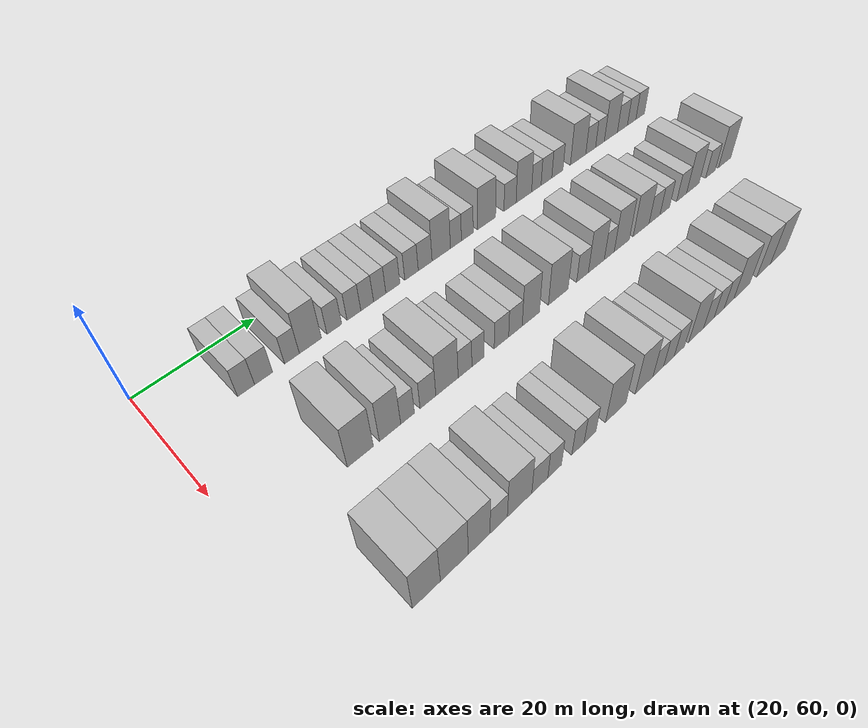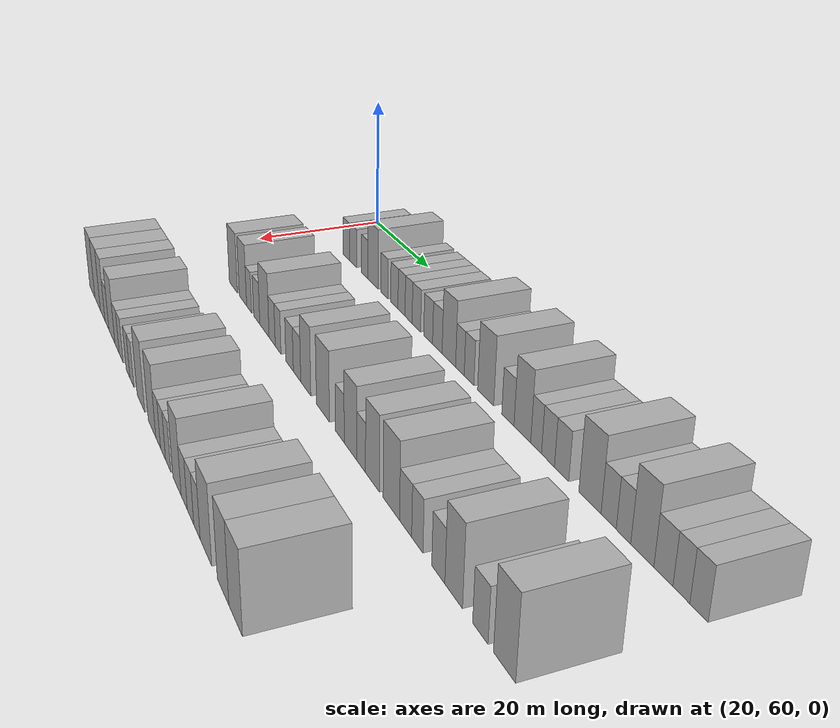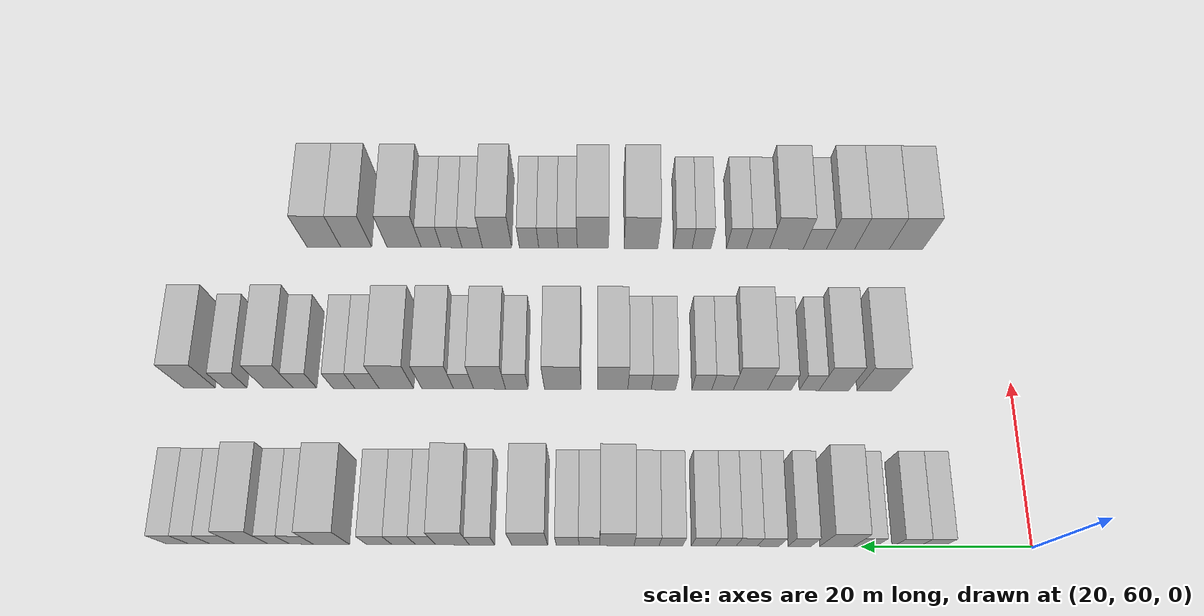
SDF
<sdf version="1.6">
 <world name="default">
  <model name="building_104">
   <static>1</static>
   <pose>25.0000 72.0563 0 0.000000 0.000000 0.000000</pose>
   <link name="link">
    <pose>0 0 3.00 0 0 0</pose>
    <collision name="collision"><geometry><box><size>10.0000 2.7497 6.0000</size></box></geometry></collision>
    <visual name="visual">
     <cast_shadows>0</cast_shadows>
     <geometry><box><size>10.0000 2.7497 6.0000</size></box></geometry>
     <material>
      <script>
       <uri>model://HANNAS_wall/materials/scripts</uri>
       <uri>model://HANNAS_wall/materials/textures</uri>
       <name>vrc/HANNAS_wall</name>
      </script>
     </material>
    </visual>
   </link>
  </model>
  <model name="building_105">
   <static>1</static>
   <pose>25.0000 74.9197 0 0.000000 0.000000 0.000000</pose>
   <link name="link">
    <pose>0 0 3.00 0 0 0</pose>
    <collision name="collision"><geometry><box><size>10.0000 2.9771 6.0000</size></box></geometry></collision>
    <visual name="visual">
     <cast_shadows>0</cast_shadows>
     <geometry><box><size>10.0000 2.9771 6.0000</size></box></geometry>
     <material>
      <script>
       <uri>model://HANNAS_wall/materials/scripts</uri>
       <uri>model://HANNAS_wall/materials/textures</uri>
       <name>vrc/HANNAS_wall</name>
      </script>
     </material>
    </visual>
   </link>
  </model>
  <model name="building_106">
   <static>1</static>
   <pose>25.0000 79.6851 0 0.000000 0.000000 0.000000</pose>
   <link name="link">
    <pose>0 0 3.00 0 0 0</pose>
    <collision name="collision"><geometry><box><size>10.0000 2.5538 6.0000</size></box></geometry></collision>
    <visual name="visual">
     <cast_shadows>0</cast_shadows>
     <geometry><box><size>10.0000 2.5538 6.0000</size></box></geometry>
     <material>
      <script>
       <uri>model://HANNAS_wall/materials/scripts</uri>
       <uri>model://HANNAS_wall/materials/textures</uri>
       <name>vrc/HANNAS_wall</name>
      </script>
     </material>
    </visual>
   </link>
  </model>
  <model name="building_107">
   <static>1</static>
   <pose>25.0000 82.9162 0 0.000000 0.000000 0.000000</pose>
   <link name="link">
    <pose>0 0 4.50 0 0 0</pose>
    <collision name="collision"><geometry><box><size>10.0000 3.9083 9.0000</size></box></geometry></collision>
    <visual name="visual">
     <cast_shadows>0</cast_shadows>
     <geometry><box><size>10.0000 3.9083 9.0000</size></box></geometry>
     <material>
      <script>
       <uri>model://HANNAS_wall/materials/scripts</uri>
       <uri>model://HANNAS_wall/materials/textures</uri>
       <name>vrc/HANNAS_wall</name>
      </script>
     </material>
    </visual>
   </link>
  </model>
  <model name="building_108">
   <static>1</static>
   <pose>25.0000 87.2199 0 0.000000 0.000000 0.000000</pose>
   <link name="link">
    <pose>0 0 3.00 0 0 0</pose>
    <collision name="collision"><geometry><box><size>10.0000 2.6990 6.0000</size></box></geometry></collision>
    <visual name="visual">
     <cast_shadows>0</cast_shadows>
     <geometry><box><size>10.0000 2.6990 6.0000</size></box></geometry>
     <material>
      <script>
       <uri>model://HANNAS_wall/materials/scripts</uri>
       <uri>model://HANNAS_wall/materials/textures</uri>
       <name>vrc/HANNAS_wall</name>
      </script>
     </material>
    </visual>
   </link>
  </model>
  <model name="building_109">
   <static>1</static>
   <pose>25.0000 90.8690 0 0.000000 0.000000 0.000000</pose>
   <link name="link">
    <pose>0 0 3.00 0 0 0</pose>
    <collision name="collision"><geometry><box><size>10.0000 2.5992 6.0000</size></box></geometry></collision>
    <visual name="visual">
     <cast_shadows>0</cast_shadows>
     <geometry><box><size>10.0000 2.5992 6.0000</size></box></geometry>
     <material>
      <script>
       <uri>model://HANNAS_wall/materials/scripts</uri>
       <uri>model://HANNAS_wall/materials/textures</uri>
       <name>vrc/HANNAS_wall</name>
      </script>
     </material>
    </visual>
   </link>
  </model>
  <model name="building_110">
   <static>1</static>
   <pose>25.0000 93.3935 0 0.000000 0.000000 0.000000</pose>
   <link name="link">
    <pose>0 0 3.00 0 0 0</pose>
    <collision name="collision"><geometry><box><size>10.0000 2.4498 6.0000</size></box></geometry></collision>
    <visual name="visual">
     <cast_shadows>0</cast_shadows>
     <geometry><box><size>10.0000 2.4498 6.0000</size></box></geometry>
     <material>
      <script>
       <uri>model://HANNAS_wall/materials/scripts</uri>
       <uri>model://HANNAS_wall/materials/textures</uri>
       <name>vrc/HANNAS_wall</name>
      </script>
     </material>
    </visual>
   </link>
  </model>
  <model name="building_111">
   <static>1</static>
   <pose>25.0000 95.8264 0 0.000000 0.000000 0.000000</pose>
   <link name="link">
    <pose>0 0 3.00 0 0 0</pose>
    <collision name="collision"><geometry><box><size>10.0000 2.4160 6.0000</size></box></geometry></collision>
    <visual name="visual">
     <cast_shadows>0</cast_shadows>
     <geometry><box><size>10.0000 2.4160 6.0000</size></box></geometry>
     <material>
      <script>
       <uri>model://HANNAS_wall/materials/scripts</uri>
       <uri>model://HANNAS_wall/materials/textures</uri>
       <name>vrc/HANNAS_wall</name>
      </script>
     </material>
    </visual>
   </link>
  </model>
  <model name="building_112">
   <static>1</static>
   <pose>25.0000 98.4387 0 0.000000 0.000000 0.000000</pose>
   <link name="link">
    <pose>0 0 3.00 0 0 0</pose>
    <collision name="collision"><geometry><box><size>10.0000 2.8087 6.0000</size></box></geometry></collision>
    <visual name="visual">
     <cast_shadows>0</cast_shadows>
     <geometry><box><size>10.0000 2.8087 6.0000</size></box></geometry>
     <material>
      <script>
       <uri>model://HANNAS_wall/materials/scripts</uri>
       <uri>model://HANNAS_wall/materials/textures</uri>
       <name>vrc/HANNAS_wall</name>
      </script>
     </material>
    </visual>
   </link>
  </model>
  <model name="building_113">
   <static>1</static>
   <pose>25.0000 102.2338 0 0.000000 0.000000 0.000000</pose>
   <link name="link">
    <pose>0 0 3.00 0 0 0</pose>
    <collision name="collision"><geometry><box><size>10.0000 2.7815 6.0000</size></box></geometry></collision>
    <visual name="visual">
     <cast_shadows>0</cast_shadows>
     <geometry><box><size>10.0000 2.7815 6.0000</size></box></geometry>
     <material>
      <script>
       <uri>model://HANNAS_wall/materials/scripts</uri>
       <uri>model://HANNAS_wall/materials/textures</uri>
       <name>vrc/HANNAS_wall</name>
      </script>
     </material>
    </visual>
   </link>
  </model>
  <model name="building_114">
   <static>1</static>
   <pose>25.0000 105.0807 0 0.000000 0.000000 0.000000</pose>
   <link name="link">
    <pose>0 0 3.00 0 0 0</pose>
    <collision name="collision"><geometry><box><size>10.0000 2.9123 6.0000</size></box></geometry></collision>
    <visual name="visual">
     <cast_shadows>0</cast_shadows>
     <geometry><box><size>10.0000 2.9123 6.0000</size></box></geometry>
     <material>
      <script>
       <uri>model://HANNAS_wall/materials/scripts</uri>
       <uri>model://HANNAS_wall/materials/textures</uri>
       <name>vrc/HANNAS_wall</name>
      </script>
     </material>
    </visual>
   </link>
  </model>
  <model name="building_115">
   <static>1</static>
   <pose>25.0000 108.5226 0 0.000000 0.000000 0.000000</pose>
   <link name="link">
    <pose>0 0 4.50 0 0 0</pose>
    <collision name="collision"><geometry><box><size>10.0000 3.9714 9.0000</size></box></geometry></collision>
    <visual name="visual">
     <cast_shadows>0</cast_shadows>
     <geometry><box><size>10.0000 3.9714 9.0000</size></box></geometry>
     <material>
      <script>
       <uri>model://HANNAS_wall/materials/scripts</uri>
       <uri>model://HANNAS_wall/materials/textures</uri>
       <name>vrc/HANNAS_wall</name>
      </script>
     </material>
    </visual>
   </link>
  </model>
  <model name="building_116">
   <static>1</static>
   <pose>25.0000 111.7250 0 0.000000 0.000000 0.000000</pose>
   <link name="link">
    <pose>0 0 3.00 0 0 0</pose>
    <collision name="collision"><geometry><box><size>10.0000 2.4335 6.0000</size></box></geometry></collision>
    <visual name="visual">
     <cast_shadows>0</cast_shadows>
     <geometry><box><size>10.0000 2.4335 6.0000</size></box></geometry>
     <material>
      <script>
       <uri>model://HANNAS_wall/materials/scripts</uri>
       <uri>model://HANNAS_wall/materials/textures</uri>
       <name>vrc/HANNAS_wall</name>
      </script>
     </material>
    </visual>
   </link>
  </model>
  <model name="building_117">
   <static>1</static>
   <pose>25.0000 114.2732 0 0.000000 0.000000 0.000000</pose>
   <link name="link">
    <pose>0 0 3.00 0 0 0</pose>
    <collision name="collision"><geometry><box><size>10.0000 2.6630 6.0000</size></box></geometry></collision>
    <visual name="visual">
     <cast_shadows>0</cast_shadows>
     <geometry><box><size>10.0000 2.6630 6.0000</size></box></geometry>
     <material>
      <script>
       <uri>model://HANNAS_wall/materials/scripts</uri>
       <uri>model://HANNAS_wall/materials/textures</uri>
       <name>vrc/HANNAS_wall</name>
      </script>
     </material>
    </visual>
   </link>
  </model>
  <model name="building_118">
   <static>1</static>
   <pose>25.0000 118.7036 0 0.000000 0.000000 0.000000</pose>
   <link name="link">
    <pose>0 0 4.50 0 0 0</pose>
    <collision name="collision"><geometry><box><size>10.0000 4.1977 9.0000</size></box></geometry></collision>
    <visual name="visual">
     <cast_shadows>0</cast_shadows>
     <geometry><box><size>10.0000 4.1977 9.0000</size></box></geometry>
     <material>
      <script>
       <uri>model://HANNAS_wall/materials/scripts</uri>
       <uri>model://HANNAS_wall/materials/textures</uri>
       <name>vrc/HANNAS_wall</name>
      </script>
     </material>
    </visual>
   </link>
  </model>
  <model name="building_119">
   <static>1</static>
   <pose>25.0000 124.2835 0 0.000000 0.000000 0.000000</pose>
   <link name="link">
    <pose>0 0 3.00 0 0 0</pose>
    <collision name="collision"><geometry><box><size>10.0000 2.9621 6.0000</size></box></geometry></collision>
    <visual name="visual">
     <cast_shadows>0</cast_shadows>
     <geometry><box><size>10.0000 2.9621 6.0000</size></box></geometry>
     <material>
      <script>
       <uri>model://HANNAS_wall/materials/scripts</uri>
       <uri>model://HANNAS_wall/materials/textures</uri>
       <name>vrc/HANNAS_wall</name>
      </script>
     </material>
    </visual>
   </link>
  </model>
  <model name="building_120">
   <static>1</static>
   <pose>25.0000 127.6969 0 0.000000 0.000000 0.000000</pose>
   <link name="link">
    <pose>0 0 4.50 0 0 0</pose>
    <collision name="collision"><geometry><box><size>10.0000 3.8647 9.0000</size></box></geometry></collision>
    <visual name="visual">
     <cast_shadows>0</cast_shadows>
     <geometry><box><size>10.0000 3.8647 9.0000</size></box></geometry>
     <material>
      <script>
       <uri>model://HANNAS_wall/materials/scripts</uri>
       <uri>model://HANNAS_wall/materials/textures</uri>
       <name>vrc/HANNAS_wall</name>
      </script>
     </material>
    </visual>
   </link>
  </model>
  <model name="building_121">
   <static>1</static>
   <pose>25.0000 130.8299 0 0.000000 0.000000 0.000000</pose>
   <link name="link">
    <pose>0 0 3.00 0 0 0</pose>
    <collision name="collision"><geometry><box><size>10.0000 2.4013 6.0000</size></box></geometry></collision>
    <visual name="visual">
     <cast_shadows>0</cast_shadows>
     <geometry><box><size>10.0000 2.4013 6.0000</size></box></geometry>
     <material>
      <script>
       <uri>model://HANNAS_wall/materials/scripts</uri>
       <uri>model://HANNAS_wall/materials/textures</uri>
       <name>vrc/HANNAS_wall</name>
      </script>
     </material>
    </visual>
   </link>
  </model>
  <model name="building_122">
   <static>1</static>
   <pose>25.0000 133.4220 0 0.000000 0.000000 0.000000</pose>
   <link name="link">
    <pose>0 0 3.00 0 0 0</pose>
    <collision name="collision"><geometry><box><size>10.0000 2.7829 6.0000</size></box></geometry></collision>
    <visual name="visual">
     <cast_shadows>0</cast_shadows>
     <geometry><box><size>10.0000 2.7829 6.0000</size></box></geometry>
     <material>
      <script>
       <uri>model://HANNAS_wall/materials/scripts</uri>
       <uri>model://HANNAS_wall/materials/textures</uri>
       <name>vrc/HANNAS_wall</name>
      </script>
     </material>
    </visual>
   </link>
  </model>
  <model name="building_123">
   <static>1</static>
   <pose>25.0000 136.2915 0 0.000000 0.000000 0.000000</pose>
   <link name="link">
    <pose>0 0 3.00 0 0 0</pose>
    <collision name="collision"><geometry><box><size>10.0000 2.9561 6.0000</size></box></geometry></collision>
    <visual name="visual">
     <cast_shadows>0</cast_shadows>
     <geometry><box><size>10.0000 2.9561 6.0000</size></box></geometry>
     <material>
      <script>
       <uri>model://HANNAS_wall/materials/scripts</uri>
       <uri>model://HANNAS_wall/materials/textures</uri>
       <name>vrc/HANNAS_wall</name>
      </script>
     </material>
    </visual>
   </link>
  </model>
  <model name="building_124">
   <static>1</static>
   <pose>25.0000 141.8852 0 0.000000 0.000000 0.000000</pose>
   <link name="link">
    <pose>0 0 4.50 0 0 0</pose>
    <collision name="collision"><geometry><box><size>10.0000 4.2313 9.0000</size></box></geometry></collision>
    <visual name="visual">
     <cast_shadows>0</cast_shadows>
     <geometry><box><size>10.0000 4.2313 9.0000</size></box></geometry>
     <material>
      <script>
       <uri>model://HANNAS_wall/materials/scripts</uri>
       <uri>model://HANNAS_wall/materials/textures</uri>
       <name>vrc/HANNAS_wall</name>
      </script>
     </material>
    </visual>
   </link>
  </model>
  <model name="building_125">
   <static>1</static>
   <pose>25.0000 145.3755 0 0.000000 0.000000 0.000000</pose>
   <link name="link">
    <pose>0 0 3.00 0 0 0</pose>
    <collision name="collision"><geometry><box><size>10.0000 2.7493 6.0000</size></box></geometry></collision>
    <visual name="visual">
     <cast_shadows>0</cast_shadows>
     <geometry><box><size>10.0000 2.7493 6.0000</size></box></geometry>
     <material>
      <script>
       <uri>model://HANNAS_wall/materials/scripts</uri>
       <uri>model://HANNAS_wall/materials/textures</uri>
       <name>vrc/HANNAS_wall</name>
      </script>
     </material>
    </visual>
   </link>
  </model>
  <model name="building_126">
   <static>1</static>
   <pose>25.0000 148.0064 0 0.000000 0.000000 0.000000</pose>
   <link name="link">
    <pose>0 0 3.00 0 0 0</pose>
    <collision name="collision"><geometry><box><size>10.0000 2.5124 6.0000</size></box></geometry></collision>
    <visual name="visual">
     <cast_shadows>0</cast_shadows>
     <geometry><box><size>10.0000 2.5124 6.0000</size></box></geometry>
     <material>
      <script>
       <uri>model://HANNAS_wall/materials/scripts</uri>
       <uri>model://HANNAS_wall/materials/textures</uri>
       <name>vrc/HANNAS_wall</name>
      </script>
     </material>
    </visual>
   </link>
  </model>
  <model name="building_127">
   <static>1</static>
   <pose>25.0000 151.1794 0 0.000000 0.000000 0.000000</pose>
   <link name="link">
    <pose>0 0 4.50 0 0 0</pose>
    <collision name="collision"><geometry><box><size>10.0000 3.8335 9.0000</size></box></geometry></collision>
    <visual name="visual">
     <cast_shadows>0</cast_shadows>
     <geometry><box><size>10.0000 3.8335 9.0000</size></box></geometry>
     <material>
      <script>
       <uri>model://HANNAS_wall/materials/scripts</uri>
       <uri>model://HANNAS_wall/materials/textures</uri>
       <name>vrc/HANNAS_wall</name>
      </script>
     </material>
    </visual>
   </link>
  </model>
  <model name="building_128">
   <static>1</static>
   <pose>25.0000 154.5914 0 0.000000 0.000000 0.000000</pose>
   <link name="link">
    <pose>0 0 3.00 0 0 0</pose>
    <collision name="collision"><geometry><box><size>10.0000 2.9905 6.0000</size></box></geometry></collision>
    <visual name="visual">
     <cast_shadows>0</cast_shadows>
     <geometry><box><size>10.0000 2.9905 6.0000</size></box></geometry>
     <material>
      <script>
       <uri>model://HANNAS_wall/materials/scripts</uri>
       <uri>model://HANNAS_wall/materials/textures</uri>
       <name>vrc/HANNAS_wall</name>
      </script>
     </material>
    </visual>
   </link>
  </model>
  <model name="building_129">
   <static>1</static>
   <pose>25.0000 157.3601 0 0.000000 0.000000 0.000000</pose>
   <link name="link">
    <pose>0 0 3.00 0 0 0</pose>
    <collision name="collision"><geometry><box><size>10.0000 2.5469 6.0000</size></box></geometry></collision>
    <visual name="visual">
     <cast_shadows>0</cast_shadows>
     <geometry><box><size>10.0000 2.5469 6.0000</size></box></geometry>
     <material>
      <script>
       <uri>model://HANNAS_wall/materials/scripts</uri>
       <uri>model://HANNAS_wall/materials/textures</uri>
       <name>vrc/HANNAS_wall</name>
      </script>
     </material>
    </visual>
   </link>
  </model>
  <model name="building_130">
   <static>1</static>
   <pose>25.0000 159.9580 0 0.000000 0.000000 0.000000</pose>
   <link name="link">
    <pose>0 0 3.00 0 0 0</pose>
    <collision name="collision"><geometry><box><size>10.0000 2.6490 6.0000</size></box></geometry></collision>
    <visual name="visual">
     <cast_shadows>0</cast_shadows>
     <geometry><box><size>10.0000 2.6490 6.0000</size></box></geometry>
     <material>
      <script>
       <uri>model://HANNAS_wall/materials/scripts</uri>
       <uri>model://HANNAS_wall/materials/textures</uri>
       <name>vrc/HANNAS_wall</name>
      </script>
     </material>
    </visual>
   </link>
  </model>
  <model name="building_276">
   <static>1</static>
   <pose>44.0000 76.8749 0 0.000000 0.000000 0.000000</pose>
   <link name="link">
    <pose>0 0 4.50 0 0 0</pose>
    <collision name="collision"><geometry><box><size>10.0000 4.2829 9.0000</size></box></geometry></collision>
    <visual name="visual">
     <cast_shadows>0</cast_shadows>
     <geometry><box><size>10.0000 4.2829 9.0000</size></box></geometry>
     <material>
      <script>
       <uri>model://HANNAS_wall/materials/scripts</uri>
       <uri>model://HANNAS_wall/materials/textures</uri>
       <name>vrc/HANNAS_wall</name>
      </script>
     </material>
    </visual>
   </link>
  </model>
  <model name="building_277">
   <static>1</static>
   <pose>44.0000 81.8533 0 0.000000 0.000000 0.000000</pose>
   <link name="link">
    <pose>0 0 4.50 0 0 0</pose>
    <collision name="collision"><geometry><box><size>10.0000 3.6740 9.0000</size></box></geometry></collision>
    <visual name="visual">
     <cast_shadows>0</cast_shadows>
     <geometry><box><size>10.0000 3.6740 9.0000</size></box></geometry>
     <material>
      <script>
       <uri>model://HANNAS_wall/materials/scripts</uri>
       <uri>model://HANNAS_wall/materials/textures</uri>
       <name>vrc/HANNAS_wall</name>
      </script>
     </material>
    </visual>
   </link>
  </model>
  <model name="building_278">
   <static>1</static>
   <pose>44.0000 84.8981 0 0.000000 0.000000 0.000000</pose>
   <link name="link">
    <pose>0 0 3.00 0 0 0</pose>
    <collision name="collision"><geometry><box><size>10.0000 2.4155 6.0000</size></box></geometry></collision>
    <visual name="visual">
     <cast_shadows>0</cast_shadows>
     <geometry><box><size>10.0000 2.4155 6.0000</size></box></geometry>
     <material>
      <script>
       <uri>model://HANNAS_wall/materials/scripts</uri>
       <uri>model://HANNAS_wall/materials/textures</uri>
       <name>vrc/HANNAS_wall</name>
      </script>
     </material>
    </visual>
   </link>
  </model>
  <model name="building_279">
   <static>1</static>
   <pose>44.0000 88.5542 0 0.000000 0.000000 0.000000</pose>
   <link name="link">
    <pose>0 0 3.00 0 0 0</pose>
    <collision name="collision"><geometry><box><size>10.0000 2.8967 6.0000</size></box></geometry></collision>
    <visual name="visual">
     <cast_shadows>0</cast_shadows>
     <geometry><box><size>10.0000 2.8967 6.0000</size></box></geometry>
     <material>
      <script>
       <uri>model://HANNAS_wall/materials/scripts</uri>
       <uri>model://HANNAS_wall/materials/textures</uri>
       <name>vrc/HANNAS_wall</name>
      </script>
     </material>
    </visual>
   </link>
  </model>
  <model name="building_280">
   <static>1</static>
   <pose>44.0000 92.1007 0 0.000000 0.000000 0.000000</pose>
   <link name="link">
    <pose>0 0 4.50 0 0 0</pose>
    <collision name="collision"><geometry><box><size>10.0000 4.1963 9.0000</size></box></geometry></collision>
    <visual name="visual">
     <cast_shadows>0</cast_shadows>
     <geometry><box><size>10.0000 4.1963 9.0000</size></box></geometry>
     <material>
      <script>
       <uri>model://HANNAS_wall/materials/scripts</uri>
       <uri>model://HANNAS_wall/materials/textures</uri>
       <name>vrc/HANNAS_wall</name>
      </script>
     </material>
    </visual>
   </link>
  </model>
  <model name="building_281">
   <static>1</static>
   <pose>44.0000 95.5311 0 0.000000 0.000000 0.000000</pose>
   <link name="link">
    <pose>0 0 3.00 0 0 0</pose>
    <collision name="collision"><geometry><box><size>10.0000 2.6646 6.0000</size></box></geometry></collision>
    <visual name="visual">
     <cast_shadows>0</cast_shadows>
     <geometry><box><size>10.0000 2.6646 6.0000</size></box></geometry>
     <material>
      <script>
       <uri>model://HANNAS_wall/materials/scripts</uri>
       <uri>model://HANNAS_wall/materials/textures</uri>
       <name>vrc/HANNAS_wall</name>
      </script>
     </material>
    </visual>
   </link>
  </model>
  <model name="building_282">
   <static>1</static>
   <pose>44.0000 98.0911 0 0.000000 0.000000 0.000000</pose>
   <link name="link">
    <pose>0 0 3.00 0 0 0</pose>
    <collision name="collision"><geometry><box><size>10.0000 2.4554 6.0000</size></box></geometry></collision>
    <visual name="visual">
     <cast_shadows>0</cast_shadows>
     <geometry><box><size>10.0000 2.4554 6.0000</size></box></geometry>
     <material>
      <script>
       <uri>model://HANNAS_wall/materials/scripts</uri>
       <uri>model://HANNAS_wall/materials/textures</uri>
       <name>vrc/HANNAS_wall</name>
      </script>
     </material>
    </visual>
   </link>
  </model>
  <model name="building_283">
   <static>1</static>
   <pose>44.0000 102.8122 0 0.000000 0.000000 0.000000</pose>
   <link name="link">
    <pose>0 0 3.00 0 0 0</pose>
    <collision name="collision"><geometry><box><size>10.0000 2.9869 6.0000</size></box></geometry></collision>
    <visual name="visual">
     <cast_shadows>0</cast_shadows>
     <geometry><box><size>10.0000 2.9869 6.0000</size></box></geometry>
     <material>
      <script>
       <uri>model://HANNAS_wall/materials/scripts</uri>
       <uri>model://HANNAS_wall/materials/textures</uri>
       <name>vrc/HANNAS_wall</name>
      </script>
     </material>
    </visual>
   </link>
  </model>
  <model name="building_284">
   <static>1</static>
   <pose>44.0000 105.7350 0 0.000000 0.000000 0.000000</pose>
   <link name="link">
    <pose>0 0 3.00 0 0 0</pose>
    <collision name="collision"><geometry><box><size>10.0000 2.8587 6.0000</size></box></geometry></collision>
    <visual name="visual">
     <cast_shadows>0</cast_shadows>
     <geometry><box><size>10.0000 2.8587 6.0000</size></box></geometry>
     <material>
      <script>
       <uri>model://HANNAS_wall/materials/scripts</uri>
       <uri>model://HANNAS_wall/materials/textures</uri>
       <name>vrc/HANNAS_wall</name>
      </script>
     </material>
    </visual>
   </link>
  </model>
  <model name="building_285">
   <static>1</static>
   <pose>44.0000 109.0394 0 0.000000 0.000000 0.000000</pose>
   <link name="link">
    <pose>0 0 4.50 0 0 0</pose>
    <collision name="collision"><geometry><box><size>10.0000 3.7499 9.0000</size></box></geometry></collision>
    <visual name="visual">
     <cast_shadows>0</cast_shadows>
     <geometry><box><size>10.0000 3.7499 9.0000</size></box></geometry>
     <material>
      <script>
       <uri>model://HANNAS_wall/materials/scripts</uri>
       <uri>model://HANNAS_wall/materials/textures</uri>
       <name>vrc/HANNAS_wall</name>
      </script>
     </material>
    </visual>
   </link>
  </model>
  <model name="building_286">
   <static>1</static>
   <pose>44.0000 115.1559 0 0.000000 0.000000 0.000000</pose>
   <link name="link">
    <pose>0 0 4.50 0 0 0</pose>
    <collision name="collision"><geometry><box><size>10.0000 4.4832 9.0000</size></box></geometry></collision>
    <visual name="visual">
     <cast_shadows>0</cast_shadows>
     <geometry><box><size>10.0000 4.4832 9.0000</size></box></geometry>
     <material>
      <script>
       <uri>model://HANNAS_wall/materials/scripts</uri>
       <uri>model://HANNAS_wall/materials/textures</uri>
       <name>vrc/HANNAS_wall</name>
      </script>
     </material>
    </visual>
   </link>
  </model>
  <model name="building_287">
   <static>1</static>
   <pose>44.0000 120.7952 0 0.000000 0.000000 0.000000</pose>
   <link name="link">
    <pose>0 0 3.00 0 0 0</pose>
    <collision name="collision"><geometry><box><size>10.0000 2.7954 6.0000</size></box></geometry></collision>
    <visual name="visual">
     <cast_shadows>0</cast_shadows>
     <geometry><box><size>10.0000 2.7954 6.0000</size></box></geometry>
     <material>
      <script>
       <uri>model://HANNAS_wall/materials/scripts</uri>
       <uri>model://HANNAS_wall/materials/textures</uri>
       <name>vrc/HANNAS_wall</name>
      </script>
     </material>
    </visual>
   </link>
  </model>
  <model name="building_288">
   <static>1</static>
   <pose>44.0000 124.1482 0 0.000000 0.000000 0.000000</pose>
   <link name="link">
    <pose>0 0 4.50 0 0 0</pose>
    <collision name="collision"><geometry><box><size>10.0000 3.9106 9.0000</size></box></geometry></collision>
    <visual name="visual">
     <cast_shadows>0</cast_shadows>
     <geometry><box><size>10.0000 3.9106 9.0000</size></box></geometry>
     <material>
      <script>
       <uri>model://HANNAS_wall/materials/scripts</uri>
       <uri>model://HANNAS_wall/materials/textures</uri>
       <name>vrc/HANNAS_wall</name>
      </script>
     </material>
    </visual>
   </link>
  </model>
  <model name="building_289">
   <static>1</static>
   <pose>44.0000 127.3404 0 0.000000 0.000000 0.000000</pose>
   <link name="link">
    <pose>0 0 3.00 0 0 0</pose>
    <collision name="collision"><geometry><box><size>10.0000 2.4738 6.0000</size></box></geometry></collision>
    <visual name="visual">
     <cast_shadows>0</cast_shadows>
     <geometry><box><size>10.0000 2.4738 6.0000</size></box></geometry>
     <material>
      <script>
       <uri>model://HANNAS_wall/materials/scripts</uri>
       <uri>model://HANNAS_wall/materials/textures</uri>
       <name>vrc/HANNAS_wall</name>
      </script>
     </material>
    </visual>
   </link>
  </model>
  <model name="building_290">
   <static>1</static>
   <pose>44.0000 130.5202 0 0.000000 0.000000 0.000000</pose>
   <link name="link">
    <pose>0 0 4.50 0 0 0</pose>
    <collision name="collision"><geometry><box><size>10.0000 3.8858 9.0000</size></box></geometry></collision>
    <visual name="visual">
     <cast_shadows>0</cast_shadows>
     <geometry><box><size>10.0000 3.8858 9.0000</size></box></geometry>
     <material>
      <script>
       <uri>model://HANNAS_wall/materials/scripts</uri>
       <uri>model://HANNAS_wall/materials/textures</uri>
       <name>vrc/HANNAS_wall</name>
      </script>
     </material>
    </visual>
   </link>
  </model>
  <model name="building_291">
   <static>1</static>
   <pose>44.0000 135.5930 0 0.000000 0.000000 0.000000</pose>
   <link name="link">
    <pose>0 0 4.50 0 0 0</pose>
    <collision name="collision"><geometry><box><size>10.0000 4.2598 9.0000</size></box></geometry></collision>
    <visual name="visual">
     <cast_shadows>0</cast_shadows>
     <geometry><box><size>10.0000 4.2598 9.0000</size></box></geometry>
     <material>
      <script>
       <uri>model://HANNAS_wall/materials/scripts</uri>
       <uri>model://HANNAS_wall/materials/textures</uri>
       <name>vrc/HANNAS_wall</name>
      </script>
     </material>
    </visual>
   </link>
  </model>
  <model name="building_292">
   <static>1</static>
   <pose>44.0000 139.2191 0 0.000000 0.000000 0.000000</pose>
   <link name="link">
    <pose>0 0 3.00 0 0 0</pose>
    <collision name="collision"><geometry><box><size>10.0000 2.9923 6.0000</size></box></geometry></collision>
    <visual name="visual">
     <cast_shadows>0</cast_shadows>
     <geometry><box><size>10.0000 2.9923 6.0000</size></box></geometry>
     <material>
      <script>
       <uri>model://HANNAS_wall/materials/scripts</uri>
       <uri>model://HANNAS_wall/materials/textures</uri>
       <name>vrc/HANNAS_wall</name>
      </script>
     </material>
    </visual>
   </link>
  </model>
  <model name="building_293">
   <static>1</static>
   <pose>44.0000 142.0519 0 0.000000 0.000000 0.000000</pose>
   <link name="link">
    <pose>0 0 3.00 0 0 0</pose>
    <collision name="collision"><geometry><box><size>10.0000 2.6733 6.0000</size></box></geometry></collision>
    <visual name="visual">
     <cast_shadows>0</cast_shadows>
     <geometry><box><size>10.0000 2.6733 6.0000</size></box></geometry>
     <material>
      <script>
       <uri>model://HANNAS_wall/materials/scripts</uri>
       <uri>model://HANNAS_wall/materials/textures</uri>
       <name>vrc/HANNAS_wall</name>
      </script>
     </material>
    </visual>
   </link>
  </model>
  <model name="building_294">
   <static>1</static>
   <pose>44.0000 146.8311 0 0.000000 0.000000 0.000000</pose>
   <link name="link">
    <pose>0 0 3.00 0 0 0</pose>
    <collision name="collision"><geometry><box><size>10.0000 2.8851 6.0000</size></box></geometry></collision>
    <visual name="visual">
     <cast_shadows>0</cast_shadows>
     <geometry><box><size>10.0000 2.8851 6.0000</size></box></geometry>
     <material>
      <script>
       <uri>model://HANNAS_wall/materials/scripts</uri>
       <uri>model://HANNAS_wall/materials/textures</uri>
       <name>vrc/HANNAS_wall</name>
      </script>
     </material>
    </visual>
   </link>
  </model>
  <model name="building_295">
   <static>1</static>
   <pose>44.0000 150.1090 0 0.000000 0.000000 0.000000</pose>
   <link name="link">
    <pose>0 0 4.50 0 0 0</pose>
    <collision name="collision"><geometry><box><size>10.0000 3.6707 9.0000</size></box></geometry></collision>
    <visual name="visual">
     <cast_shadows>0</cast_shadows>
     <geometry><box><size>10.0000 3.6707 9.0000</size></box></geometry>
     <material>
      <script>
       <uri>model://HANNAS_wall/materials/scripts</uri>
       <uri>model://HANNAS_wall/materials/textures</uri>
       <name>vrc/HANNAS_wall</name>
      </script>
     </material>
    </visual>
   </link>
  </model>
  <model name="building_296">
   <static>1</static>
   <pose>44.0000 155.4129 0 0.000000 0.000000 0.000000</pose>
   <link name="link">
    <pose>0 0 3.00 0 0 0</pose>
    <collision name="collision"><geometry><box><size>10.0000 2.9372 6.0000</size></box></geometry></collision>
    <visual name="visual">
     <cast_shadows>0</cast_shadows>
     <geometry><box><size>10.0000 2.9372 6.0000</size></box></geometry>
     <material>
      <script>
       <uri>model://HANNAS_wall/materials/scripts</uri>
       <uri>model://HANNAS_wall/materials/textures</uri>
       <name>vrc/HANNAS_wall</name>
      </script>
     </material>
    </visual>
   </link>
  </model>
  <model name="building_297">
   <static>1</static>
   <pose>44.0000 159.8414 0 0.000000 0.000000 0.000000</pose>
   <link name="link">
    <pose>0 0 4.50 0 0 0</pose>
    <collision name="collision"><geometry><box><size>10.0000 3.9198 9.0000</size></box></geometry></collision>
    <visual name="visual">
     <cast_shadows>0</cast_shadows>
     <geometry><box><size>10.0000 3.9198 9.0000</size></box></geometry>
     <material>
      <script>
       <uri>model://HANNAS_wall/materials/scripts</uri>
       <uri>model://HANNAS_wall/materials/textures</uri>
       <name>vrc/HANNAS_wall</name>
      </script>
     </material>
    </visual>
   </link>
  </model>
  <model name="building_454">
   <static>1</static>
   <pose>63.0000 71.2263 0 0.000000 0.000000 0.000000</pose>
   <link name="link">
    <pose>0 0 4.50 0 0 0</pose>
    <collision name="collision"><geometry><box><size>10.0000 4.2923 9.0000</size></box></geometry></collision>
    <visual name="visual">
     <cast_shadows>0</cast_shadows>
     <geometry><box><size>10.0000 4.2923 9.0000</size></box></geometry>
     <material>
      <script>
       <uri>model://HANNAS_wall/materials/scripts</uri>
       <uri>model://HANNAS_wall/materials/textures</uri>
       <name>vrc/HANNAS_wall</name>
      </script>
     </material>
    </visual>
   </link>
  </model>
  <model name="building_455">
   <static>1</static>
   <pose>63.0000 75.6053 0 0.000000 0.000000 0.000000</pose>
   <link name="link">
    <pose>0 0 4.50 0 0 0</pose>
    <collision name="collision"><geometry><box><size>10.0000 4.4658 9.0000</size></box></geometry></collision>
    <visual name="visual">
     <cast_shadows>0</cast_shadows>
     <geometry><box><size>10.0000 4.4658 9.0000</size></box></geometry>
     <material>
      <script>
       <uri>model://HANNAS_wall/materials/scripts</uri>
       <uri>model://HANNAS_wall/materials/textures</uri>
       <name>vrc/HANNAS_wall</name>
      </script>
     </material>
    </visual>
   </link>
  </model>
  <model name="building_456">
   <static>1</static>
   <pose>63.0000 79.6479 0 0.000000 0.000000 0.000000</pose>
   <link name="link">
    <pose>0 0 4.50 0 0 0</pose>
    <collision name="collision"><geometry><box><size>10.0000 3.6194 9.0000</size></box></geometry></collision>
    <visual name="visual">
     <cast_shadows>0</cast_shadows>
     <geometry><box><size>10.0000 3.6194 9.0000</size></box></geometry>
     <material>
      <script>
       <uri>model://HANNAS_wall/materials/scripts</uri>
       <uri>model://HANNAS_wall/materials/textures</uri>
       <name>vrc/HANNAS_wall</name>
      </script>
     </material>
    </visual>
   </link>
  </model>
  <model name="building_457">
   <static>1</static>
   <pose>63.0000 82.9490 0 0.000000 0.000000 0.000000</pose>
   <link name="link">
    <pose>0 0 3.00 0 0 0</pose>
    <collision name="collision"><geometry><box><size>10.0000 2.9828 6.0000</size></box></geometry></collision>
    <visual name="visual">
     <cast_shadows>0</cast_shadows>
     <geometry><box><size>10.0000 2.9828 6.0000</size></box></geometry>
     <material>
      <script>
       <uri>model://HANNAS_wall/materials/scripts</uri>
       <uri>model://HANNAS_wall/materials/textures</uri>
       <name>vrc/HANNAS_wall</name>
      </script>
     </material>
    </visual>
   </link>
  </model>
  <model name="building_458">
   <static>1</static>
   <pose>63.0000 86.6181 0 0.000000 0.000000 0.000000</pose>
   <link name="link">
    <pose>0 0 4.50 0 0 0</pose>
    <collision name="collision"><geometry><box><size>10.0000 4.3553 9.0000</size></box></geometry></collision>
    <visual name="visual">
     <cast_shadows>0</cast_shadows>
     <geometry><box><size>10.0000 4.3553 9.0000</size></box></geometry>
     <material>
      <script>
       <uri>model://HANNAS_wall/materials/scripts</uri>
       <uri>model://HANNAS_wall/materials/textures</uri>
       <name>vrc/HANNAS_wall</name>
      </script>
     </material>
    </visual>
   </link>
  </model>
  <model name="building_459">
   <static>1</static>
   <pose>63.0000 90.2735 0 0.000000 0.000000 0.000000</pose>
   <link name="link">
    <pose>0 0 3.00 0 0 0</pose>
    <collision name="collision"><geometry><box><size>10.0000 2.9556 6.0000</size></box></geometry></collision>
    <visual name="visual">
     <cast_shadows>0</cast_shadows>
     <geometry><box><size>10.0000 2.9556 6.0000</size></box></geometry>
     <material>
      <script>
       <uri>model://HANNAS_wall/materials/scripts</uri>
       <uri>model://HANNAS_wall/materials/textures</uri>
       <name>vrc/HANNAS_wall</name>
      </script>
     </material>
    </visual>
   </link>
  </model>
  <model name="building_460">
   <static>1</static>
   <pose>63.0000 93.0572 0 0.000000 0.000000 0.000000</pose>
   <link name="link">
    <pose>0 0 3.00 0 0 0</pose>
    <collision name="collision"><geometry><box><size>10.0000 2.6119 6.0000</size></box></geometry></collision>
    <visual name="visual">
     <cast_shadows>0</cast_shadows>
     <geometry><box><size>10.0000 2.6119 6.0000</size></box></geometry>
     <material>
      <script>
       <uri>model://HANNAS_wall/materials/scripts</uri>
       <uri>model://HANNAS_wall/materials/textures</uri>
       <name>vrc/HANNAS_wall</name>
      </script>
     </material>
    </visual>
   </link>
  </model>
  <model name="building_461">
   <static>1</static>
   <pose>63.0000 97.5764 0 0.000000 0.000000 0.000000</pose>
   <link name="link">
    <pose>0 0 3.00 0 0 0</pose>
    <collision name="collision"><geometry><box><size>10.0000 2.4265 6.0000</size></box></geometry></collision>
    <visual name="visual">
     <cast_shadows>0</cast_shadows>
     <geometry><box><size>10.0000 2.4265 6.0000</size></box></geometry>
     <material>
      <script>
       <uri>model://HANNAS_wall/materials/scripts</uri>
       <uri>model://HANNAS_wall/materials/textures</uri>
       <name>vrc/HANNAS_wall</name>
      </script>
     </material>
    </visual>
   </link>
  </model>
  <model name="building_462">
   <static>1</static>
   <pose>63.0000 99.9962 0 0.000000 0.000000 0.000000</pose>
   <link name="link">
    <pose>0 0 3.00 0 0 0</pose>
    <collision name="collision"><geometry><box><size>10.0000 2.4131 6.0000</size></box></geometry></collision>
    <visual name="visual">
     <cast_shadows>0</cast_shadows>
     <geometry><box><size>10.0000 2.4131 6.0000</size></box></geometry>
     <material>
      <script>
       <uri>model://HANNAS_wall/materials/scripts</uri>
       <uri>model://HANNAS_wall/materials/textures</uri>
       <name>vrc/HANNAS_wall</name>
      </script>
     </material>
    </visual>
   </link>
  </model>
  <model name="building_463">
   <static>1</static>
   <pose>63.0000 105.3827 0 0.000000 0.000000 0.000000</pose>
   <link name="link">
    <pose>0 0 4.50 0 0 0</pose>
    <collision name="collision"><geometry><box><size>10.0000 4.3598 9.0000</size></box></geometry></collision>
    <visual name="visual">
     <cast_shadows>0</cast_shadows>
     <geometry><box><size>10.0000 4.3598 9.0000</size></box></geometry>
     <material>
      <script>
       <uri>model://HANNAS_wall/materials/scripts</uri>
       <uri>model://HANNAS_wall/materials/textures</uri>
       <name>vrc/HANNAS_wall</name>
      </script>
     </material>
    </visual>
   </link>
  </model>
  <model name="building_464">
   <static>1</static>
   <pose>63.0000 111.5710 0 0.000000 0.000000 0.000000</pose>
   <link name="link">
    <pose>0 0 4.50 0 0 0</pose>
    <collision name="collision"><geometry><box><size>10.0000 4.0169 9.0000</size></box></geometry></collision>
    <visual name="visual">
     <cast_shadows>0</cast_shadows>
     <geometry><box><size>10.0000 4.0169 9.0000</size></box></geometry>
     <material>
      <script>
       <uri>model://HANNAS_wall/materials/scripts</uri>
       <uri>model://HANNAS_wall/materials/textures</uri>
       <name>vrc/HANNAS_wall</name>
      </script>
     </material>
    </visual>
   </link>
  </model>
  <model name="building_465">
   <static>1</static>
   <pose>63.0000 114.8075 0 0.000000 0.000000 0.000000</pose>
   <link name="link">
    <pose>0 0 3.00 0 0 0</pose>
    <collision name="collision"><geometry><box><size>10.0000 2.4559 6.0000</size></box></geometry></collision>
    <visual name="visual">
     <cast_shadows>0</cast_shadows>
     <geometry><box><size>10.0000 2.4559 6.0000</size></box></geometry>
     <material>
      <script>
       <uri>model://HANNAS_wall/materials/scripts</uri>
       <uri>model://HANNAS_wall/materials/textures</uri>
       <name>vrc/HANNAS_wall</name>
      </script>
     </material>
    </visual>
   </link>
  </model>
  <model name="building_466">
   <static>1</static>
   <pose>63.0000 117.2953 0 0.000000 0.000000 0.000000</pose>
   <link name="link">
    <pose>0 0 3.00 0 0 0</pose>
    <collision name="collision"><geometry><box><size>10.0000 2.5198 6.0000</size></box></geometry></collision>
    <visual name="visual">
     <cast_shadows>0</cast_shadows>
     <geometry><box><size>10.0000 2.5198 6.0000</size></box></geometry>
     <material>
      <script>
       <uri>model://HANNAS_wall/materials/scripts</uri>
       <uri>model://HANNAS_wall/materials/textures</uri>
       <name>vrc/HANNAS_wall</name>
      </script>
     </material>
    </visual>
   </link>
  </model>
  <model name="building_467">
   <static>1</static>
   <pose>63.0000 119.7960 0 0.000000 0.000000 0.000000</pose>
   <link name="link">
    <pose>0 0 3.00 0 0 0</pose>
    <collision name="collision"><geometry><box><size>10.0000 2.4814 6.0000</size></box></geometry></collision>
    <visual name="visual">
     <cast_shadows>0</cast_shadows>
     <geometry><box><size>10.0000 2.4814 6.0000</size></box></geometry>
     <material>
      <script>
       <uri>model://HANNAS_wall/materials/scripts</uri>
       <uri>model://HANNAS_wall/materials/textures</uri>
       <name>vrc/HANNAS_wall</name>
      </script>
     </material>
    </visual>
   </link>
  </model>
  <model name="building_468">
   <static>1</static>
   <pose>63.0000 123.9250 0 0.000000 0.000000 0.000000</pose>
   <link name="link">
    <pose>0 0 4.50 0 0 0</pose>
    <collision name="collision"><geometry><box><size>10.0000 3.7767 9.0000</size></box></geometry></collision>
    <visual name="visual">
     <cast_shadows>0</cast_shadows>
     <geometry><box><size>10.0000 3.7767 9.0000</size></box></geometry>
     <material>
      <script>
       <uri>model://HANNAS_wall/materials/scripts</uri>
       <uri>model://HANNAS_wall/materials/textures</uri>
       <name>vrc/HANNAS_wall</name>
      </script>
     </material>
    </visual>
   </link>
  </model>
  <model name="building_469">
   <static>1</static>
   <pose>63.0000 127.1298 0 0.000000 0.000000 0.000000</pose>
   <link name="link">
    <pose>0 0 3.00 0 0 0</pose>
    <collision name="collision"><geometry><box><size>10.0000 2.6327 6.0000</size></box></geometry></collision>
    <visual name="visual">
     <cast_shadows>0</cast_shadows>
     <geometry><box><size>10.0000 2.6327 6.0000</size></box></geometry>
     <material>
      <script>
       <uri>model://HANNAS_wall/materials/scripts</uri>
       <uri>model://HANNAS_wall/materials/textures</uri>
       <name>vrc/HANNAS_wall</name>
      </script>
     </material>
    </visual>
   </link>
  </model>
  <model name="building_470">
   <static>1</static>
   <pose>63.0000 129.7962 0 0.000000 0.000000 0.000000</pose>
   <link name="link">
    <pose>0 0 3.00 0 0 0</pose>
    <collision name="collision"><geometry><box><size>10.0000 2.7000 6.0000</size></box></geometry></collision>
    <visual name="visual">
     <cast_shadows>0</cast_shadows>
     <geometry><box><size>10.0000 2.7000 6.0000</size></box></geometry>
     <material>
      <script>
       <uri>model://HANNAS_wall/materials/scripts</uri>
       <uri>model://HANNAS_wall/materials/textures</uri>
       <name>vrc/HANNAS_wall</name>
      </script>
     </material>
    </visual>
   </link>
  </model>
  <model name="building_471">
   <static>1</static>
   <pose>63.0000 132.4241 0 0.000000 0.000000 0.000000</pose>
   <link name="link">
    <pose>0 0 3.00 0 0 0</pose>
    <collision name="collision"><geometry><box><size>10.0000 2.5558 6.0000</size></box></geometry></collision>
    <visual name="visual">
     <cast_shadows>0</cast_shadows>
     <geometry><box><size>10.0000 2.5558 6.0000</size></box></geometry>
     <material>
      <script>
       <uri>model://HANNAS_wall/materials/scripts</uri>
       <uri>model://HANNAS_wall/materials/textures</uri>
       <name>vrc/HANNAS_wall</name>
      </script>
     </material>
    </visual>
   </link>
  </model>
  <model name="building_472">
   <static>1</static>
   <pose>63.0000 135.9044 0 0.000000 0.000000 0.000000</pose>
   <link name="link">
    <pose>0 0 4.50 0 0 0</pose>
    <collision name="collision"><geometry><box><size>10.0000 4.4050 9.0000</size></box></geometry></collision>
    <visual name="visual">
     <cast_shadows>0</cast_shadows>
     <geometry><box><size>10.0000 4.4050 9.0000</size></box></geometry>
     <material>
      <script>
       <uri>model://HANNAS_wall/materials/scripts</uri>
       <uri>model://HANNAS_wall/materials/textures</uri>
       <name>vrc/HANNAS_wall</name>
      </script>
     </material>
    </visual>
   </link>
  </model>
  <model name="building_473">
   <static>1</static>
   <pose>63.0000 142.0985 0 0.000000 0.000000 0.000000</pose>
   <link name="link">
    <pose>0 0 4.50 0 0 0</pose>
    <collision name="collision"><geometry><box><size>10.0000 3.9832 9.0000</size></box></geometry></collision>
    <visual name="visual">
     <cast_shadows>0</cast_shadows>
     <geometry><box><size>10.0000 3.9832 9.0000</size></box></geometry>
     <material>
      <script>
       <uri>model://HANNAS_wall/materials/scripts</uri>
       <uri>model://HANNAS_wall/materials/textures</uri>
       <name>vrc/HANNAS_wall</name>
      </script>
     </material>
    </visual>
   </link>
  </model>
  <model name="building_474">
   <static>1</static>
   <pose>63.0000 146.2681 0 0.000000 0.000000 0.000000</pose>
   <link name="link">
    <pose>0 0 4.50 0 0 0</pose>
    <collision name="collision"><geometry><box><size>10.0000 4.3560 9.0000</size></box></geometry></collision>
    <visual name="visual">
     <cast_shadows>0</cast_shadows>
     <geometry><box><size>10.0000 4.3560 9.0000</size></box></geometry>
     <material>
      <script>
       <uri>model://HANNAS_wall/materials/scripts</uri>
       <uri>model://HANNAS_wall/materials/textures</uri>
       <name>vrc/HANNAS_wall</name>
      </script>
     </material>
    </visual>
   </link>
  </model>
 </world>
</sdf>
